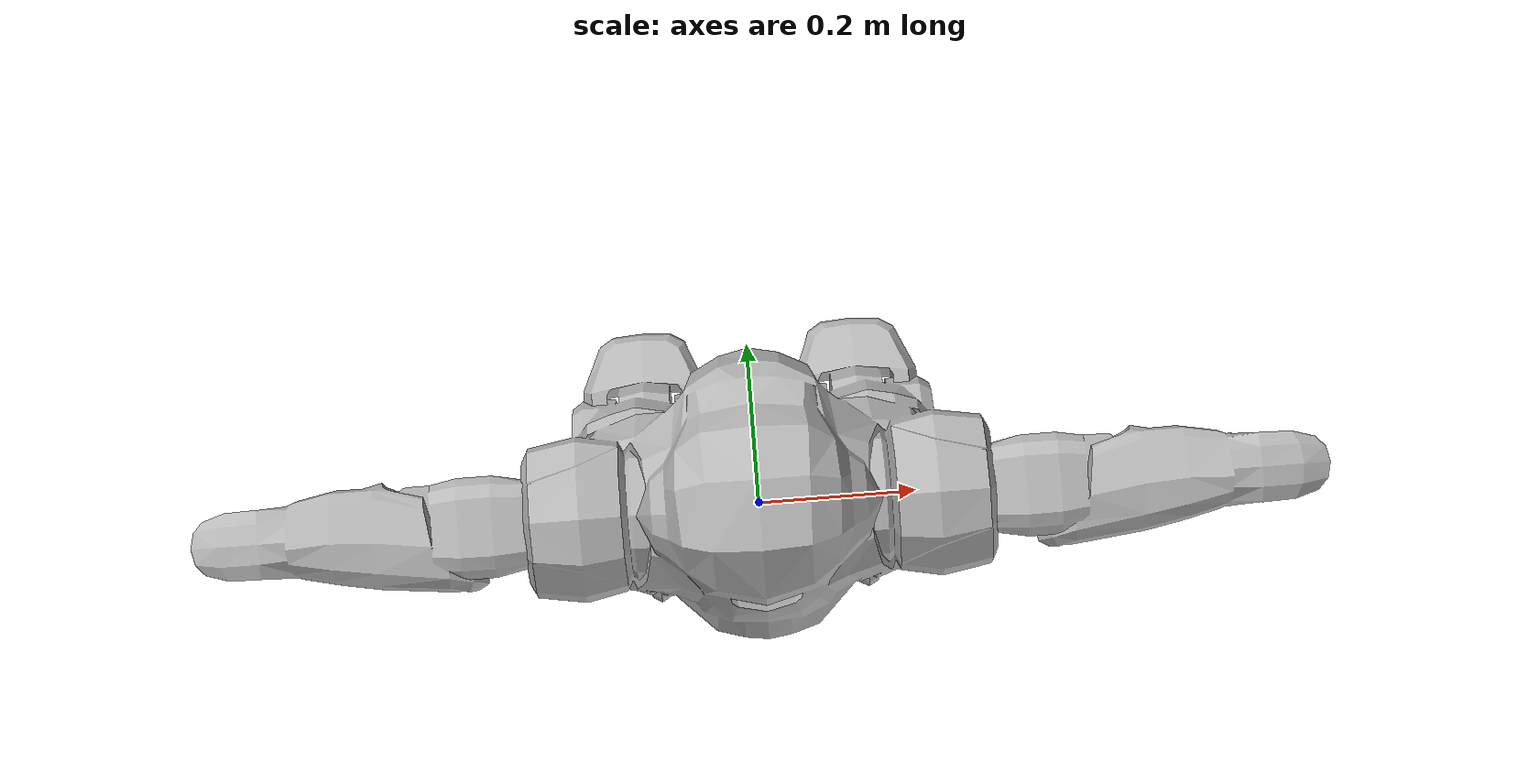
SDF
<sdf version="1.6">
  <model name="servicebot">
    <link name="link">
      <collision name="collision">
        <geometry>
          <mesh>
            <uri>model://servicebot/meshes/servicebot.obj</uri>
            <scale>0.01 0.01 0.01</scale>
          </mesh>
        </geometry>
      </collision>
      <visual name="visual">
        <geometry>
          <mesh>
            <uri>model://servicebot/meshes/servicebot.obj</uri>
            <scale>0.01 0.01 0.01</scale>
          </mesh>
        </geometry>
      </visual>
    </link>
  </model>
</sdf>
